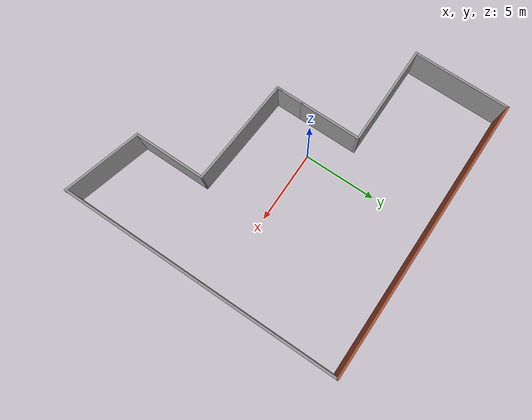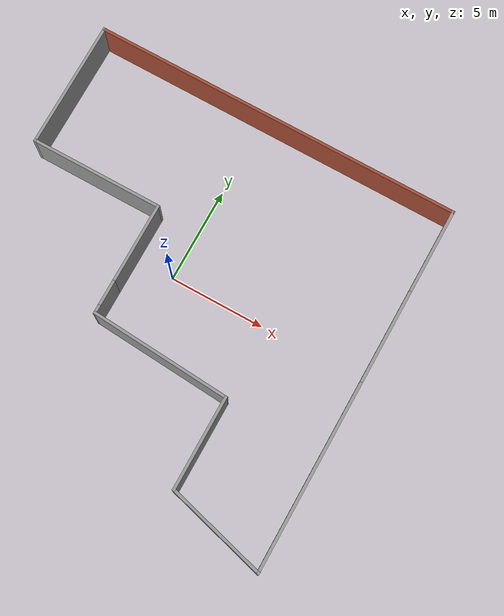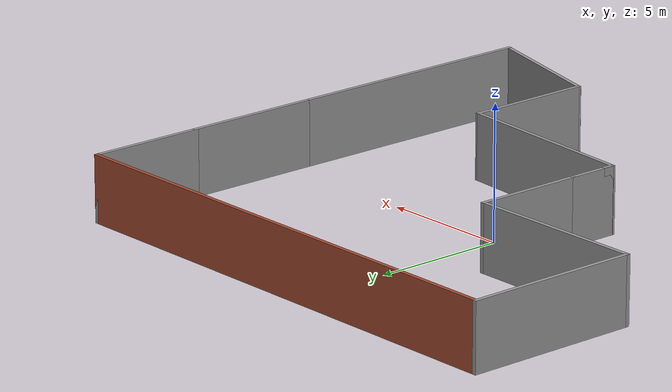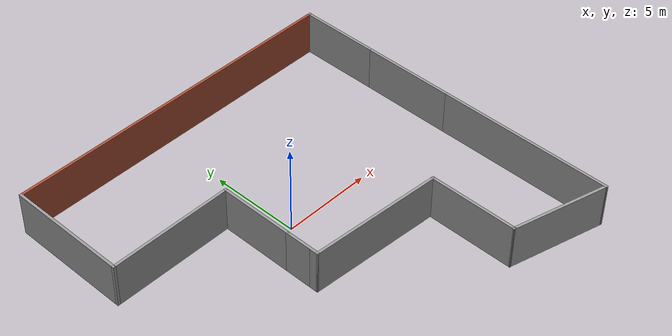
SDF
<?xml version='1.0'?>
<sdf version='1.7'>
  <model name='wheel'>
    <pose>0.843428 -0.748428 0 0 -0 0</pose>
    <link name='Wall_0'>
      <collision name='Wall_0_Collision'>
        <geometry>
          <box>
            <size>2 0.15 2.5</size>
          </box>
        </geometry>
        <pose>0 0 1.25 0 -0 0</pose>
      </collision>
      <visual name='Wall_0_Visual'>
        <pose>0 0 1.25 0 -0 0</pose>
        <geometry>
          <box>
            <size>2 0.15 2.5</size>
          </box>
        </geometry>
        <material>
          <script>
            <uri>file://media/materials/scripts/gazebo.material</uri>
            <name>Gazebo/Grey</name>
          </script>
          <ambient>1 1 1 1</ambient>
        </material>
        <meta>
          <layer>0</layer>
        </meta>
      </visual>
      <pose>-2.83343 -1.96657 0 0 -0 1.5708</pose>
    </link>
    <link name='Wall_1'>
      <collision name='Wall_1_Collision'>
        <geometry>
          <box>
            <size>4.25 0.15 2.5</size>
          </box>
        </geometry>
        <pose>0 0 1.25 0 -0 0</pose>
      </collision>
      <visual name='Wall_1_Visual'>
        <pose>0 0 1.25 0 -0 0</pose>
        <geometry>
          <box>
            <size>4.25 0.15 2.5</size>
          </box>
        </geometry>
        <material>
          <script>
            <uri>file://media/materials/scripts/gazebo.material</uri>
            <name>Gazebo/Grey</name>
          </script>
          <ambient>1 1 1 1</ambient>
        </material>
        <meta>
          <layer>0</layer>
        </meta>
      </visual>
      <pose>-2.83343 1.00843 0 0 -0 1.5708</pose>
    </link>
    <link name='Wall_10'>
      <collision name='Wall_10_Collision'>
        <geometry>
          <box>
            <size>7.5 0.15 2.5</size>
          </box>
        </geometry>
        <pose>0 0 1.25 0 -0 0</pose>
      </collision>
      <visual name='Wall_10_Visual'>
        <pose>0 0 1.25 0 -0 0</pose>
        <geometry>
          <box>
            <size>7.5 0.15 2.5</size>
          </box>
        </geometry>
        <material>
          <script>
            <uri>file://media/materials/scripts/gazebo.material</uri>
            <name>Gazebo/Grey</name>
          </script>
          <ambient>1 1 1 1</ambient>
        </material>
        <meta>
          <layer>0</layer>
        </meta>
      </visual>
      <pose>0.832721 -3.14923 0 0 -0 3.07143</pose>
    </link>
    <link name='Wall_11'>
      <collision name='Wall_11_Collision'>
        <geometry>
          <box>
            <size>0.5 0.15 2.5</size>
          </box>
        </geometry>
        <pose>0 0 1.25 0 -0 0</pose>
      </collision>
      <visual name='Wall_11_Visual'>
        <pose>0 0 1.25 0 -0 0</pose>
        <geometry>
          <box>
            <size>0.5 0.15 2.5</size>
          </box>
        </geometry>
        <material>
          <script>
            <uri>file://media/materials/scripts/gazebo.material</uri>
            <name>Gazebo/Grey</name>
          </script>
          <ambient>1 1 1 1</ambient>
        </material>
        <meta>
          <layer>0</layer>
        </meta>
      </visual>
      <pose>-2.83343 -2.71657 0 0 -0 1.5708</pose>
    </link>
    <link name='Wall_2'>
      <collision name='Wall_2_Collision'>
        <geometry>
          <box>
            <size>7 0.15 2.5</size>
          </box>
        </geometry>
        <pose>0 0 1.25 0 -0 0</pose>
      </collision>
      <visual name='Wall_2_Visual'>
        <pose>0 0 1.25 0 -0 0</pose>
        <geometry>
          <box>
            <size>7 0.15 2.5</size>
          </box>
        </geometry>
        <material>
          <script>
            <uri>file://media/materials/scripts/gazebo.material</uri>
            <name>Gazebo/Grey</name>
          </script>
          <ambient>1 1 1 1</ambient>
        </material>
        <meta>
          <layer>0</layer>
        </meta>
      </visual>
      <pose>-6.25843 3.05843 0 0 -0 3.14159</pose>
    </link>
    <link name='Wall_3'>
      <collision name='Wall_3_Collision'>
        <geometry>
          <box>
            <size>6.75 0.15 2.5</size>
          </box>
        </geometry>
        <pose>0 0 1.25 0 -0 0</pose>
      </collision>
      <visual name='Wall_3_Visual'>
        <pose>0 0 1.25 0 -0 0</pose>
        <geometry>
          <box>
            <size>6.75 0.15 2.5</size>
          </box>
        </geometry>
        <material>
          <script>
            <uri>file://media/materials/scripts/gazebo.material</uri>
            <name>Gazebo/Grey</name>
          </script>
          <ambient>1 1 1 1</ambient>
        </material>
        <meta>
          <layer>0</layer>
        </meta>
      </visual>
      <pose>-9.68343 6.35843 0 0 -0 1.5708</pose>
    </link>
    <link name='Wall_4'>
      <collision name='Wall_4_Collision'>
        <geometry>
          <box>
            <size>19.5 0.15 2.5</size>
          </box>
        </geometry>
        <pose>0 0 1.25 0 -0 0</pose>
      </collision>
      <visual name='Wall_4_Visual'>
        <pose>0 0 1.25 0 -0 0</pose>
        <geometry>
          <box>
            <size>19.5 0.15 2.5</size>
          </box>
        </geometry>
        <material>
          <script>
            <uri>file://media/materials/scripts/gazebo.material</uri>
            <name>Gazebo/Bricks</name>
          </script>
          <ambient>1 1 1 1</ambient>
        </material>
        <meta>
          <layer>0</layer>
        </meta>
      </visual>
      <pose>-0.008428 9.65843 0 0 -0 0</pose>
    </link>
    <link name='Wall_5'>
      <collision name='Wall_5_Collision'>
        <geometry>
          <box>
            <size>4.5 0.15 2.5</size>
          </box>
        </geometry>
        <pose>0 0 1.25 0 -0 0</pose>
      </collision>
      <visual name='Wall_5_Visual'>
        <pose>0 0 1.25 0 -0 0</pose>
        <geometry>
          <box>
            <size>4.5 0.15 2.5</size>
          </box>
        </geometry>
        <material>
          <script>
            <uri>file://media/materials/scripts/gazebo.material</uri>
            <name>Gazebo/Grey</name>
          </script>
          <ambient>1 1 1 1</ambient>
        </material>
        <meta>
          <layer>0</layer>
        </meta>
      </visual>
      <pose>9.66657 7.48343 0 0 -0 -1.5708</pose>
    </link>
    <link name='Wall_6'>
      <collision name='Wall_6_Collision'>
        <geometry>
          <box>
            <size>5.25 0.15 2.5</size>
          </box>
        </geometry>
        <pose>0 0 1.25 0 -0 0</pose>
      </collision>
      <visual name='Wall_6_Visual'>
        <pose>0 0 1.25 0 -0 0</pose>
        <geometry>
          <box>
            <size>5.25 0.15 2.5</size>
          </box>
        </geometry>
        <material>
          <script>
            <uri>file://media/materials/scripts/gazebo.material</uri>
            <name>Gazebo/Grey</name>
          </script>
          <ambient>1 1 1 1</ambient>
        </material>
        <meta>
          <layer>0</layer>
        </meta>
      </visual>
      <pose>9.66657 2.75843 0 0 -0 -1.5708</pose>
    </link>
    <link name='Wall_7'>
      <collision name='Wall_7_Collision'>
        <geometry>
          <box>
            <size>10 0.15 2.5</size>
          </box>
        </geometry>
        <pose>0 0 1.25 0 -0 0</pose>
      </collision>
      <visual name='Wall_7_Visual'>
        <pose>0 0 1.25 0 -0 0</pose>
        <geometry>
          <box>
            <size>10 0.15 2.5</size>
          </box>
        </geometry>
        <material>
          <script>
            <uri>file://media/materials/scripts/gazebo.material</uri>
            <name>Gazebo/Grey</name>
          </script>
          <ambient>1 1 1 1</ambient>
        </material>
        <meta>
          <layer>0</layer>
        </meta>
      </visual>
      <pose>9.66657 -4.71657 0 0 -0 -1.5708</pose>
    </link>
    <link name='Wall_8'>
      <collision name='Wall_8_Collision'>
        <geometry>
          <box>
            <size>5.5 0.15 2.5</size>
          </box>
        </geometry>
        <pose>0 0 1.25 0 -0 0</pose>
      </collision>
      <visual name='Wall_8_Visual'>
        <pose>0 0 1.25 0 -0 0</pose>
        <geometry>
          <box>
            <size>5.5 0.15 2.5</size>
          </box>
        </geometry>
        <material>
          <script>
            <uri>file://media/materials/scripts/gazebo.material</uri>
            <name>Gazebo/Grey</name>
          </script>
          <ambient>1 1 1 1</ambient>
        </material>
        <meta>
          <layer>0</layer>
        </meta>
      </visual>
      <pose>7.08272 -8.94923 0 0 -0 2.87979</pose>
    </link>
    <link name='Wall_9'>
      <collision name='Wall_9_Collision'>
        <geometry>
          <box>
            <size>5 0.15 2.5</size>
          </box>
        </geometry>
        <pose>0 0 1.25 0 -0 0</pose>
      </collision>
      <visual name='Wall_9_Visual'>
        <pose>0 0 1.25 0 -0 0</pose>
        <geometry>
          <box>
            <size>5 0.15 2.5</size>
          </box>
        </geometry>
        <material>
          <script>
            <uri>file://media/materials/scripts/gazebo.material</uri>
            <name>Gazebo/Grey</name>
          </script>
          <ambient>1 1 1 1</ambient>
        </material>
        <meta>
          <layer>0</layer>
        </meta>
      </visual>
      <pose>4.49887 -5.83189 0 0 -0 1.5708</pose>
    </link>
    <static>1</static>
  </model>
</sdf>
